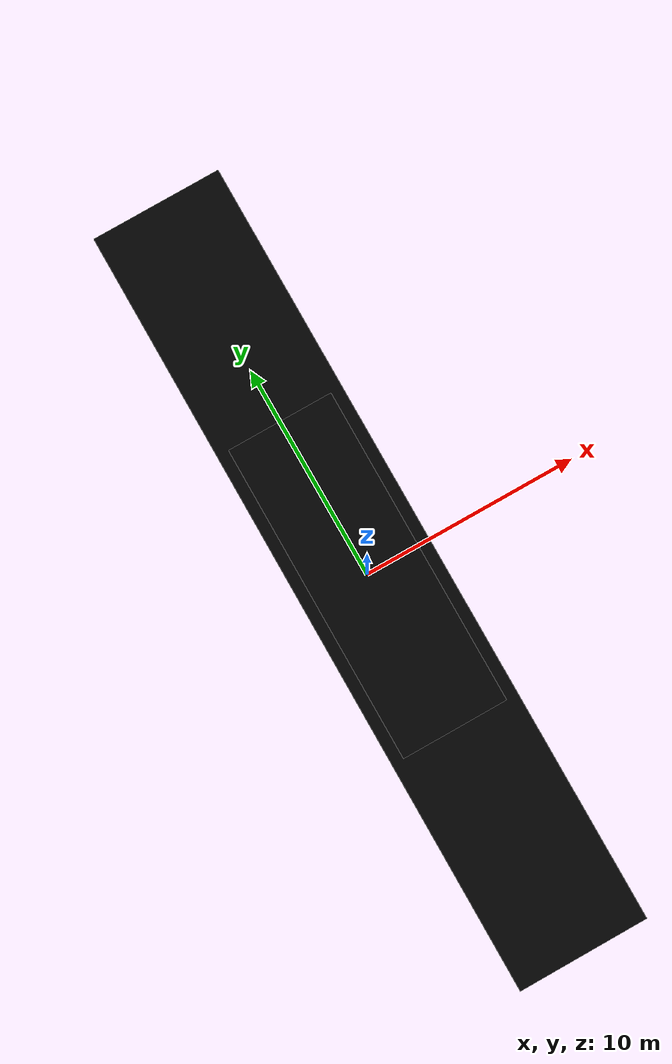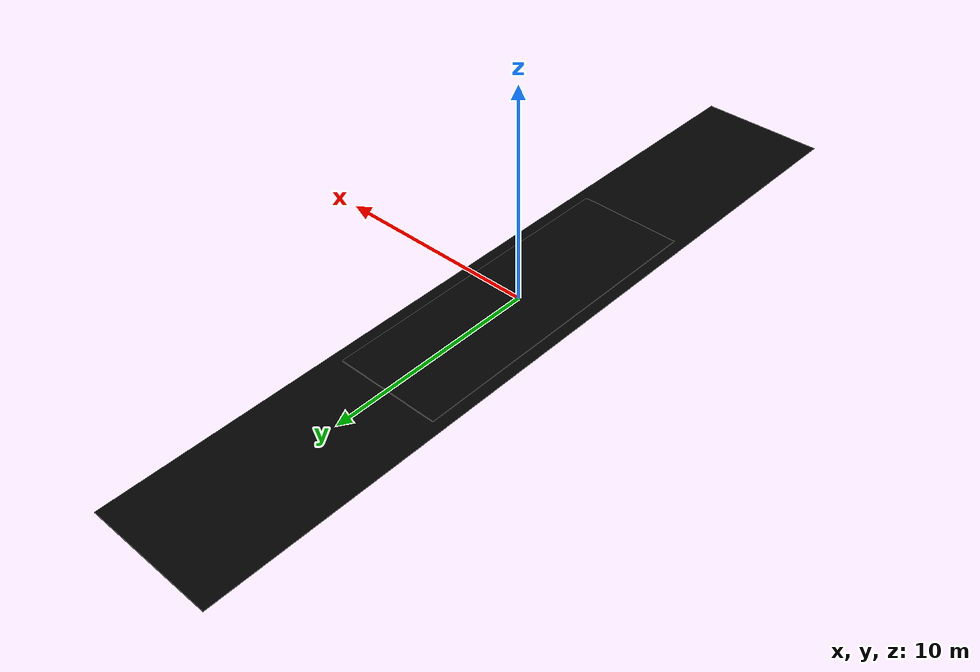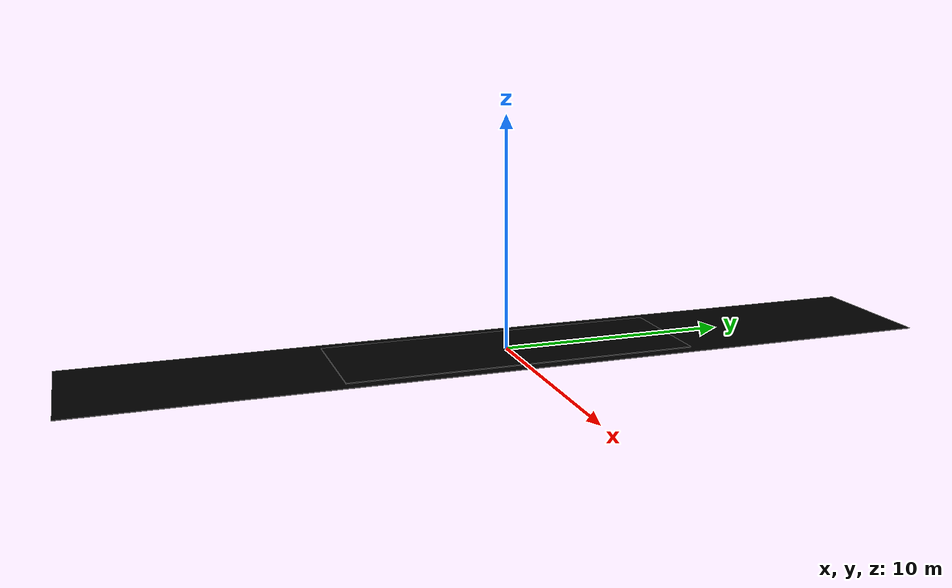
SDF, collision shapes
<?xml version='1.0'?>
<sdf version='1.7'>
  <model name='road_base'>
    <link name='platform'>
      <self_collide>0</self_collide>
      <enable_wind>0</enable_wind>
      <kinematic>0</kinematic>
      <pose>0 0 0 0 -0 0</pose>
      <gravity>1</gravity>
      <inertial>
        <mass>1</mass>
        <pose>0 0 0 0 -0 0</pose>
        <inertia>
          <ixx>1</ixx>
          <ixy>0</ixy>
          <ixz>0</ixz>
          <iyy>1</iyy>
          <iyz>0</iyz>
          <izz>1</izz>
        </inertia>
      </inertial>
      <visual name='visual'>
        <geometry>
          <mesh>
            <uri>model://drc_practice_base_4x8/meshes/4x8ftbase.dae</uri>
            <scale>5 15 1</scale>
          </mesh>
        </geometry>
        <material>
          <shader type='pixel'>
            <normal_map>__default__</normal_map>
          </shader>
          <script>
            <name>ModelPreview_5::platform::visual_MATERIAL_</name>
          </script>
          <ambient>0 0 0 1</ambient>
          <diffuse>0 0 0 1</diffuse>
          <specular>0 0 0 1</specular>
          <emissive>0 0 0 1</emissive>
        </material>
        <pose>0 0 0 0 -0 0</pose>
        <transparency>0</transparency>
        <cast_shadows>1</cast_shadows>
      </visual>
      <collision name='collision_16'>
        <laser_retro>0</laser_retro>
        <max_contacts>10</max_contacts>
        <pose>0 0 0 0 -0 0</pose>
        <geometry>
          <box>
            <size>6.096 36.576 0.0254</size>
          </box>
        </geometry>
        <surface>
          <friction>
            <ode>
              <mu>1</mu>
              <mu2>1</mu2>
              <fdir1>0 0 0</fdir1>
              <slip1>0</slip1>
              <slip2>0</slip2>
            </ode>
            <torsional>
              <coefficient>1</coefficient>
              <patch_radius>0</patch_radius>
              <surface_radius>0</surface_radius>
              <use_patch_radius>1</use_patch_radius>
              <ode>
                <slip>0</slip>
              </ode>
            </torsional>
          </friction>
          <bounce>
            <restitution_coefficient>0</restitution_coefficient>
            <threshold>1e+06</threshold>
          </bounce>
          <contact>
            <collide_without_contact>0</collide_without_contact>
            <collide_without_contact_bitmask>1</collide_without_contact_bitmask>
            <collide_bitmask>1</collide_bitmask>
            <ode>
              <soft_cfm>0</soft_cfm>
              <soft_erp>0.2</soft_erp>
              <kp>1e+13</kp>
              <kd>1</kd>
              <max_vel>0.01</max_vel>
              <min_depth>0</min_depth>
            </ode>
            <bullet>
              <split_impulse>1</split_impulse>
              <split_impulse_penetration_threshold>-0.01</split_impulse_penetration_threshold>
              <soft_cfm>0</soft_cfm>
              <soft_erp>0.2</soft_erp>
              <kp>1e+13</kp>
              <kd>1</kd>
            </bullet>
          </contact>
        </surface>
      </collision>
      <collision name='collision'>
        <laser_retro>0</laser_retro>
        <max_contacts>10</max_contacts>
        <pose>0 0 0 0 -0 0</pose>
        <geometry>
          <box>
            <size>5 15 0.1</size>
          </box>
        </geometry>
        <surface>
          <friction>
            <ode>
              <mu>100</mu>
              <mu2>50</mu2>
              <fdir1>0 0 0</fdir1>
              <slip1>0</slip1>
              <slip2>0</slip2>
            </ode>
            <torsional>
              <coefficient>1</coefficient>
              <patch_radius>0</patch_radius>
              <surface_radius>0</surface_radius>
              <use_patch_radius>1</use_patch_radius>
              <ode>
                <slip>0</slip>
              </ode>
            </torsional>
          </friction>
          <bounce>
            <restitution_coefficient>0</restitution_coefficient>
            <threshold>1e+06</threshold>
          </bounce>
          <contact>
            <collide_without_contact>0</collide_without_contact>
            <collide_without_contact_bitmask>1</collide_without_contact_bitmask>
            <collide_bitmask>1</collide_bitmask>
            <ode>
              <soft_cfm>0</soft_cfm>
              <soft_erp>0.2</soft_erp>
              <kp>1e+13</kp>
              <kd>1</kd>
              <max_vel>0.01</max_vel>
              <min_depth>0</min_depth>
            </ode>
            <bullet>
              <split_impulse>1</split_impulse>
              <split_impulse_penetration_threshold>-0.01</split_impulse_penetration_threshold>
              <soft_cfm>0</soft_cfm>
              <soft_erp>0.2</soft_erp>
              <kp>1e+13</kp>
              <kd>1</kd>
            </bullet>
          </contact>
        </surface>
      </collision>
      <collision name='collision_17'>
        <laser_retro>0</laser_retro>
        <max_contacts>10</max_contacts>
        <pose>0 0 0 0 -0 0</pose>
        <geometry>
          <box>
            <size>6.096 36.576 0.0254</size>
          </box>
        </geometry>
        <surface>
          <friction>
            <ode>
              <mu>1</mu>
              <mu2>1</mu2>
              <fdir1>0 0 0</fdir1>
              <slip1>0</slip1>
              <slip2>0</slip2>
            </ode>
            <torsional>
              <coefficient>1</coefficient>
              <patch_radius>0</patch_radius>
              <surface_radius>0</surface_radius>
              <use_patch_radius>1</use_patch_radius>
              <ode>
                <slip>0</slip>
              </ode>
            </torsional>
          </friction>
          <bounce>
            <restitution_coefficient>0</restitution_coefficient>
            <threshold>1e+06</threshold>
          </bounce>
          <contact>
            <collide_without_contact>0</collide_without_contact>
            <collide_without_contact_bitmask>1</collide_without_contact_bitmask>
            <collide_bitmask>1</collide_bitmask>
            <ode>
              <soft_cfm>0</soft_cfm>
              <soft_erp>0.2</soft_erp>
              <kp>1e+13</kp>
              <kd>1</kd>
              <max_vel>0.01</max_vel>
              <min_depth>0</min_depth>
            </ode>
            <bullet>
              <split_impulse>1</split_impulse>
              <split_impulse_penetration_threshold>-0.01</split_impulse_penetration_threshold>
              <soft_cfm>0</soft_cfm>
              <soft_erp>0.2</soft_erp>
              <kp>1e+13</kp>
              <kd>1</kd>
            </bullet>
          </contact>
        </surface>
      </collision>
    </link>
    <static>1</static>
    <allow_auto_disable>1</allow_auto_disable>
  </model>
</sdf>
